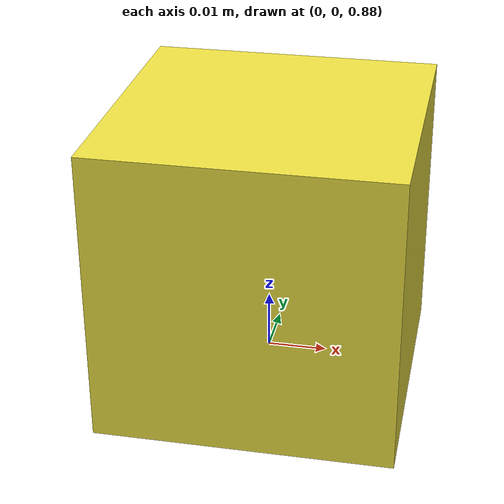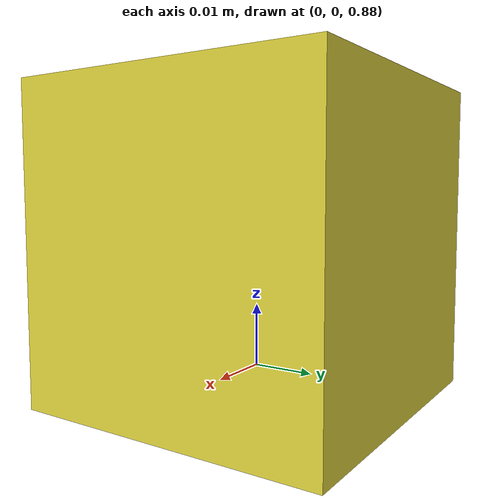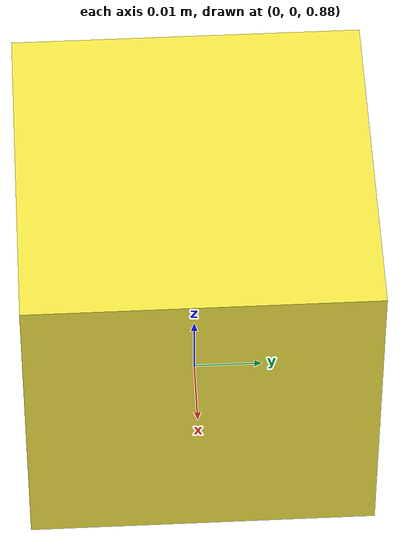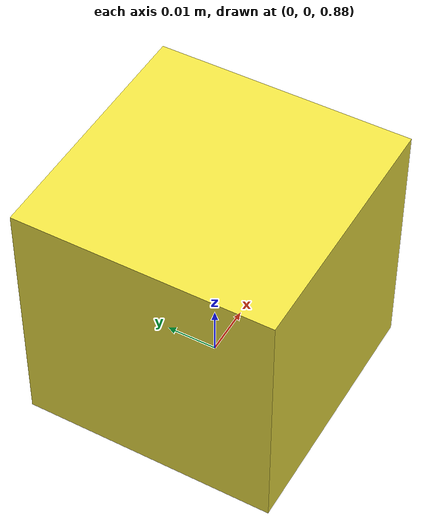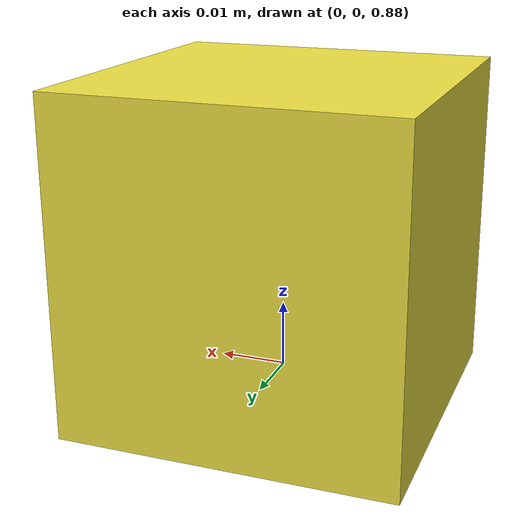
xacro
<?xml version="1.0"?>
<robot xmlns:xacro="http://www.ros.org/wiki/xacro" name="fixture_arm">

  <!-- Properties and a macro: the xacro features a plain URDF cannot express,
       so rendering this proves the xacro wheel really ran. -->
  <xacro:property name="link_len" value="0.4"/>
  <xacro:property name="mesh_pkg" value="$(find kinema_fixture)"/>

  <xacro:macro name="revolute" params="name parent child axis_xyz origin_z">
    <joint name="${name}" type="revolute">
      <parent link="${parent}"/>
      <child link="${child}"/>
      <origin xyz="0 0 ${origin_z}" rpy="0 0 0"/>
      <axis xyz="${axis_xyz}"/>
      <limit lower="-3.14" upper="3.14" effort="100" velocity="2.0"/>
    </joint>
  </xacro:macro>

  <link name="base_link"/>
  <link name="link_1"/>
  <link name="link_2"/>
  <link name="tool">
    <!-- package:// through the property above: this is the path that makes
         xacrodoc resolve a ROS package, which is what needs rospkg. -->
    <visual>
      <geometry><box size="0.05 0.05 0.05"/></geometry>
    </visual>
  </link>

  <xacro:revolute name="joint_1" parent="base_link" child="link_1"
                  axis_xyz="0 0 1" origin_z="0.1"/>
  <xacro:revolute name="joint_2" parent="link_1" child="link_2"
                  axis_xyz="0 1 0" origin_z="${link_len}"/>
  <xacro:revolute name="joint_3" parent="link_2" child="tool"
                  axis_xyz="0 1 0" origin_z="${link_len}"/>

</robot>
